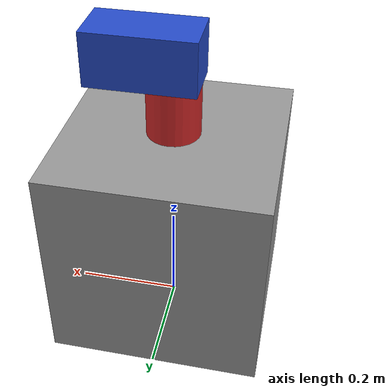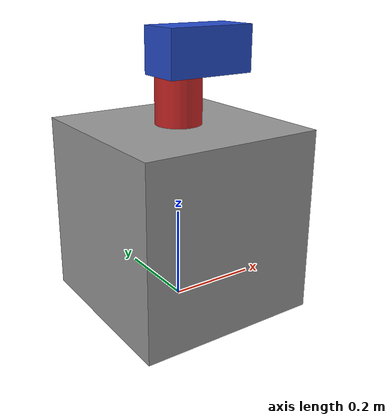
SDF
<?xml version='1.0'?>
<sdf version='1.7'>
  <model name='test_motor'>
    <pose>0.0 0.0 0.2 0 -0 0</pose>
    <link name='motor_body'>
      <inertial>
        <mass>10</mass>
        <inertia>
          <ixx>0.166667</ixx>
          <ixy>0</ixy>
          <ixz>0</ixz>
          <iyy>0.166667</iyy>
          <iyz>0</iyz>
          <izz>0.166667</izz>
        </inertia>
      </inertial>
      <collision name='collision'>
        <geometry>
          <box>
            <size>0.4 0.4 0.4</size>
          </box>
        </geometry>
      </collision>
      <visual name='visual'>
        <geometry>
          <box>
            <size>0.4 0.4 0.4</size>
          </box>
        </geometry>
        <material>
          <script>
            <name>Gazebo/Grey</name>
            <uri>file://media/materials/scripts/gazebo.material</uri>
          </script>
        </material>
      </visual>
    </link>
    <link name='motor_shaft'>
      <pose>0 0 0.25 0 -0 0</pose>
      <collision name='collision'>
        <geometry>
          <cylinder>
            <radius>0.05</radius>
            <length>0.1</length>
          </cylinder>
        </geometry>
      </collision>
      <visual name='visual'>
        <geometry>
          <cylinder>
            <radius>0.05</radius>
            <length>0.1</length>
          </cylinder>
        </geometry>
        <material>
          <script>
            <name>Gazebo/Red</name>
            <uri>file://media/materials/scripts/gazebo.material</uri>
          </script>
        </material>
      </visual>
    </link>
    <link name='bar'>
      <pose>0.05 0 0.35 0 -0 0</pose> -->
      <inertial>
        <mass>1</mass>
        <inertia>
          <ixx>0.145833</ixx>
          <ixy>0</ixy>
          <ixz>0</ixz>
          <iyy>0.145833</iyy>
          <iyz>0</iyz>
          <izz>0.125</izz>
        </inertia>
      </inertial>
      <collision name='collision'>
        <geometry>
          <box>
            <size>0.2 0.1 0.1</size>
          </box>
        </geometry>
      </collision>
      <visual name='visual'>
        <geometry>
          <box>
            <size>0.2 0.1 0.1</size>
          </box>
        </geometry>
        <material>
          <script>
            <name>Gazebo/Blue</name>
            <uri>file://media/materials/scripts/gazebo.material</uri>
          </script>
        </material>
      </visual>
    </link>
    <joint name="motor_shaft_joint" type="revolute">
      <pose>0 0 0 0 0 0</pose>
      <child>motor_shaft</child>
      <parent>motor_body</parent>
      <axis>
        <xyz>0 0 1</xyz>
      </axis>
    </joint>
    <joint name="shaft_bar_joint" type="fixed">
      <pose>0 0 0 0 0 0</pose>
      <child>bar</child>
      <parent>motor_shaft</parent>
      <axis>
        <xyz>0 0 1</xyz>
      </axis>
    </joint>
    <static>0</static>
    <allow_auto_disable>1</allow_auto_disable>
    <!-- Attach the plugin to this model -->
    <plugin name="simple_motor" filename="libgazebo_ros_simple_motor.so">
      <ros>
        <namespace>/test</namespace>
      </ros>
      <!-- Motor shaft name -->
      <motor_shaft_name>motor_shaft_joint</motor_shaft_name>
      <max_change_rpm>5.0</max_change_rpm>
      <!-- Maximum rpm. -->
      <max_rpm>500.0</max_rpm>
      <!-- Maximum position change per update.
      Similar to rpm, the maximum number of radians that will be moved per update.
      For a full circle at 10Hz, 0.314r per update will take 2 seconds.
      -->
      <max_change_radians>0.314</max_change_radians>
      <!-- Update rate in Hz -->
      <update_rate>10.0</update_rate>
    </plugin>
  </model>
</sdf>
